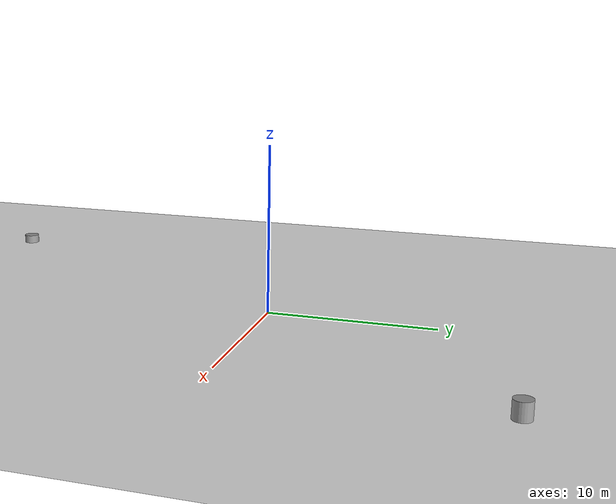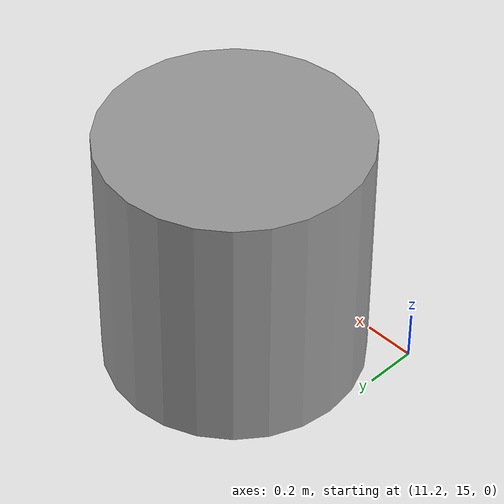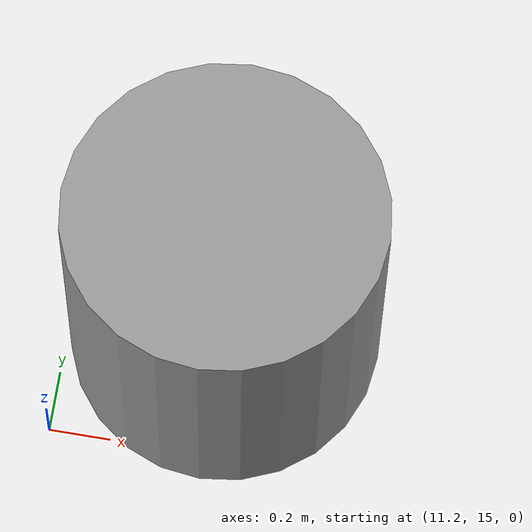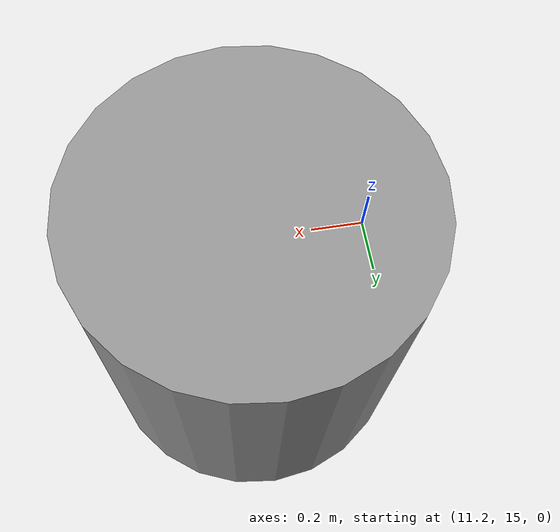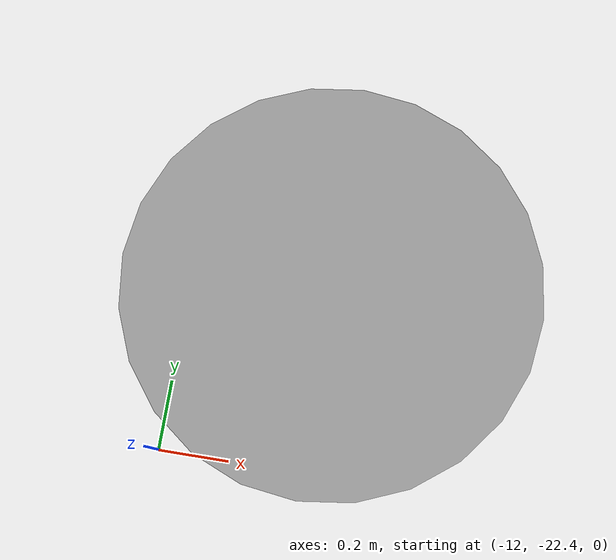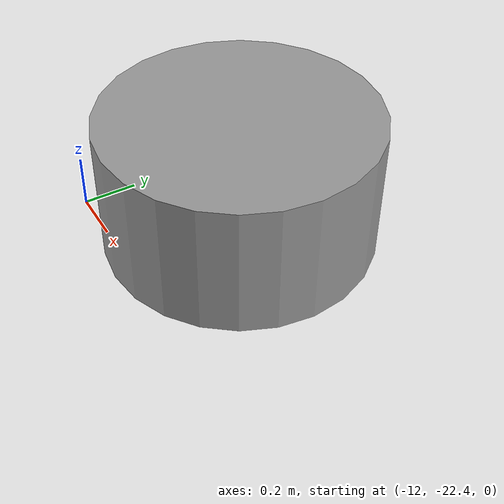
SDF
<sdf version="1.7">
 <world name="default">
  <light name="sun" type="directional">
   <pose>0 0 10 0 -0 0</pose>
   <diffuse>0.8 0.8 0.8 1</diffuse>
   <specular>0.2 0.2 0.2 1</specular>
   <attenuation>
    <range>1000</range>
    <constant>0.9</constant>
    <linear>0.01</linear>
    <quadratic>0.001</quadratic>
   </attenuation>
   <direction>-0.5 0.1 -0.9</direction>
   <spot><inner_angle>0</inner_angle><outer_angle>0</outer_angle><falloff>0</falloff></spot>
  </light>
  <model name="ground_plane">
   <static>1</static>
   <link name="link">
    <collision name="collision">
     <geometry><plane><normal>0 0 1</normal><size>100 100</size></plane></geometry>
     <surface>
      <contact><collide_bitmask>65535</collide_bitmask></contact>
      <friction><ode><mu>100</mu><mu2>50</mu2></ode></friction>
     </surface>
    </collision>
    <visual name="visual">
     <cast_shadows>0</cast_shadows>
     <geometry><plane><normal>0 0 1</normal><size>100 100</size></plane></geometry>
     <material>
      <script><uri>file://media/materials/scripts/gazebo.material</uri><name>Gazebo/White</name></script>
     </material>
    </visual>
   </link>
  </model>
  <gravity>0 0 -9.8</gravity>
  <magnetic_field>6e-06 2.3e-05 -4.2e-05</magnetic_field>
  <atmosphere type="adiabatic"/>
  <physics type="ode">
   <max_step_size>0.001</max_step_size>
   <real_time_factor>1</real_time_factor>
   <real_time_update_rate>1000</real_time_update_rate>
  </physics>
  <scene><ambient>0.4 0.4 0.4 1</ambient><background>0.7 0.7 0.7 1</background><shadows>1</shadows></scene>
  <spherical_coordinates>
   <surface_model>EARTH_WGS84</surface_model>
   <latitude_deg>0</latitude_deg>
   <longitude_deg>0</longitude_deg>
   <elevation>0</elevation>
   <heading_deg>0</heading_deg>
  </spherical_coordinates>
  <model name="Untitled2">
   <link name="link_3">
    <inertial>
     <mass>1</mass>
     <inertia><ixx>0.145833</ixx><ixy>0</ixy><ixz>0</ixz><iyy>0.145833</iyy><iyz>0</iyz><izz>0.125</izz></inertia>
    </inertial>
    <pose>-17.884 -24.4272 0.5 0 -0 0</pose>
    <visual name="visual">
     <geometry><cylinder><radius>0.5</radius><length>1</length></cylinder></geometry>
     <material>
      <lighting>1</lighting>
      <script><uri>file://media/materials/scripts/gazebo.material</uri><name>Gazebo/Grey</name></script>
      <shader type="pixel"/>
     </material>
    </visual>
    <collision name="collision">
     <geometry><cylinder><radius>0.5</radius><length>1</length></cylinder></geometry>
     <surface>
      <friction>
       <ode><mu>1</mu><mu2>1</mu2><fdir1>0 0 0</fdir1><slip1>0</slip1><slip2>0</slip2></ode>
       <torsional>
        <coefficient>1</coefficient>
        <patch_radius>0</patch_radius>
        <surface_radius>0</surface_radius>
        <use_patch_radius>1</use_patch_radius>
        <ode><slip>0</slip></ode>
       </torsional>
      </friction>
      <bounce><restitution_coefficient>0</restitution_coefficient><threshold>1e+06</threshold></bounce>
      <contact>
       <collide_without_contact>0</collide_without_contact>
       <collide_without_contact_bitmask>1</collide_without_contact_bitmask>
       <collide_bitmask>1</collide_bitmask>
       <ode>
        <soft_cfm>0</soft_cfm>
        <soft_erp>0.2</soft_erp>
        <kp>1e+13</kp>
        <kd>1</kd>
        <max_vel>0.01</max_vel>
        <min_depth>0</min_depth>
       </ode>
       <bullet>
        <split_impulse>1</split_impulse>
        <split_impulse_penetration_threshold>-0.01</split_impulse_penetration_threshold>
        <soft_cfm>0</soft_cfm>
        <soft_erp>0.2</soft_erp>
        <kp>1e+13</kp>
        <kd>1</kd>
       </bullet>
      </contact>
     </surface>
    </collision>
   </link>
   <static>0</static>
   <pose>29.5881 39.846 0 0 -0 0</pose>
  </model>
  <model name="model3.1">
   <link name="link_2">
    <inertial>
     <mass>1</mass>
     <inertia><ixx>0.145833</ixx><ixy>0</ixy><ixz>0</ixz><iyy>0.145833</iyy><iyz>0</iyz><izz>0.125</izz></inertia>
    </inertial>
    <pose>2.2e-05 -1e-05 0 0 -0 0</pose>
    <visual name="visual">
     <geometry><cylinder><radius>0.5</radius><length>1</length></cylinder></geometry>
     <material>
      <lighting>1</lighting>
      <script><uri>file://media/materials/scripts/gazebo.material</uri><name>Gazebo/Grey</name></script>
      <shader type="pixel"/>
     </material>
    </visual>
    <collision name="collision">
     <geometry><cylinder><radius>0.5</radius><length>1</length></cylinder></geometry>
     <surface>
      <friction>
       <ode><mu>1</mu><mu2>1</mu2><fdir1>0 0 0</fdir1><slip1>0</slip1><slip2>0</slip2></ode>
       <torsional>
        <coefficient>1</coefficient>
        <patch_radius>0</patch_radius>
        <surface_radius>0</surface_radius>
        <use_patch_radius>1</use_patch_radius>
        <ode><slip>0</slip></ode>
       </torsional>
      </friction>
      <bounce><restitution_coefficient>0</restitution_coefficient><threshold>1e+06</threshold></bounce>
      <contact>
       <collide_without_contact>0</collide_without_contact>
       <collide_without_contact_bitmask>1</collide_without_contact_bitmask>
       <collide_bitmask>1</collide_bitmask>
       <ode>
        <soft_cfm>0</soft_cfm>
        <soft_erp>0.2</soft_erp>
        <kp>1e+13</kp>
        <kd>1</kd>
        <max_vel>0.01</max_vel>
        <min_depth>0</min_depth>
       </ode>
       <bullet>
        <split_impulse>1</split_impulse>
        <split_impulse_penetration_threshold>-0.01</split_impulse_penetration_threshold>
        <soft_cfm>0</soft_cfm>
        <soft_erp>0.2</soft_erp>
        <kp>1e+13</kp>
        <kd>1</kd>
       </bullet>
      </contact>
     </surface>
    </collision>
   </link>
   <static>0</static>
   <pose>-11.5731 -21.9699 0 0 -0 0</pose>
  </model>
 </world>
</sdf>
